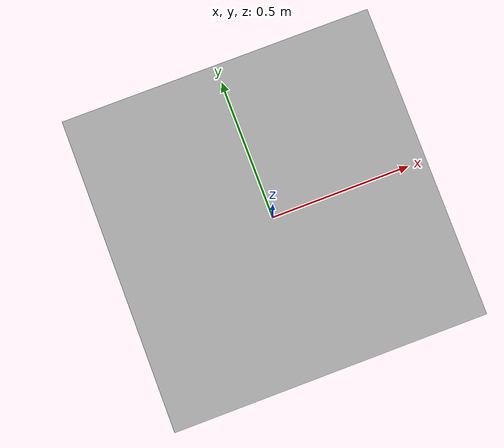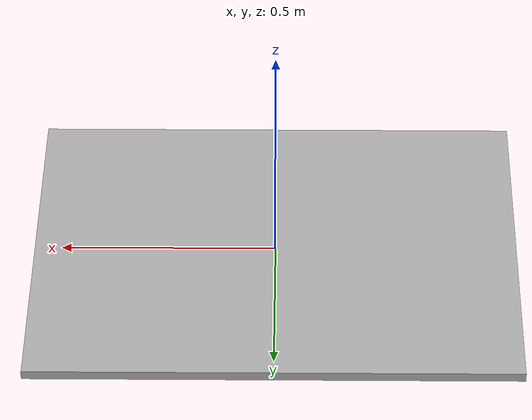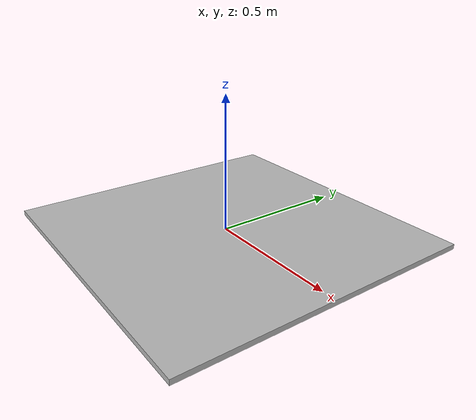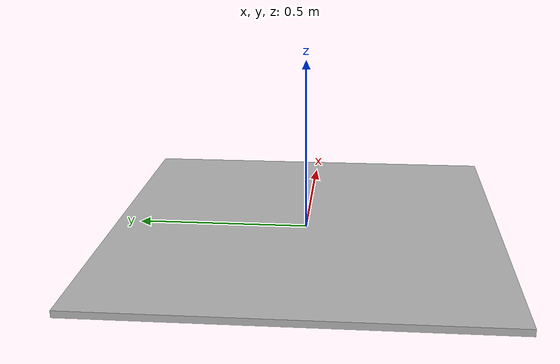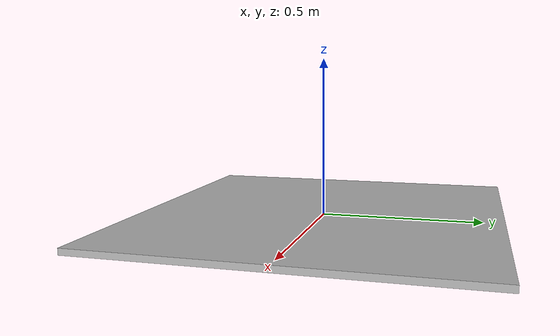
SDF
<?xml version="1.0" ?>
<sdf version="1.4">
  <model name="weazeltable">
    <static>true</static>
    <link name="top">
      <self_collide>false</self_collide>
      <visual name="top_geom_visual">
        <geometry>
          <box>
            <size>1.12713 1.12713 0.01905</size>
          </box>
        </geometry>
      </visual>
      <visual name="top_geom_visual">
        <geometry>
          <box>
            <size>1.12713 1.12713 0.01905</size>
          </box>
        </geometry>
      </visual>
    </link>

    <!-- Fixed base -->

  </model>
</sdf>
